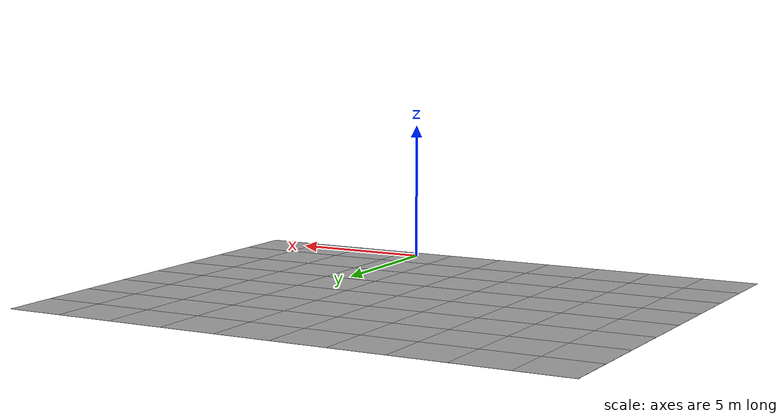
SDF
<?xml version="1.0" ?>
<sdf version="1.5">
  <model name="Starting Floor">
    <static>true</static>
    <link name="link">

      <visual name="visual_floor_0">
        <pose>-12.21 0.35 0 0 0 0</pose>
        <geometry>
          <box>
            <size>2 2 0.01</size>
          </box>
        </geometry>
        <material>
          <script>
            <uri>model://starting_floor/materials/scripts</uri>
            <uri>model://starting_floor/materials/textures</uri>
            <name>StartingFloor/Floor</name>
          </script>
        </material>
      </visual>
      <visual name="visual_floor_1">
        <pose>-10.21 0.35 0 0 0 0</pose>
        <geometry>
          <box>
            <size>2 2 0.01</size>
          </box>
        </geometry>
        <material>
          <script>
            <uri>model://starting_floor/materials/scripts</uri>
            <uri>model://starting_floor/materials/textures</uri>
            <name>StartingFloor/Floor</name>
          </script>
        </material>
      </visual>
      <visual name="visual_floor_2">
        <pose>-8.21 0.35 0 0 0 0</pose>
        <geometry>
          <box>
            <size>2 2 0.01</size>
          </box>
        </geometry>
        <material>
          <script>
            <uri>model://starting_floor/materials/scripts</uri>
            <uri>model://starting_floor/materials/textures</uri>
            <name>StartingFloor/Floor</name>
          </script>
        </material>
      </visual>
      <visual name="visual_floor_3">
        <pose>-6.21 0.35 0 0 0 0</pose>
        <geometry>
          <box>
            <size>2 2 0.01</size>
          </box>
        </geometry>
        <material>
          <script>
            <uri>model://starting_floor/materials/scripts</uri>
            <uri>model://starting_floor/materials/textures</uri>
            <name>StartingFloor/Floor</name>
          </script>
        </material>
      </visual>
      <visual name="visual_floor_4">
        <pose>-4.21 0.35 0 0 0 0</pose>
        <geometry>
          <box>
            <size>2 2 0.01</size>
          </box>
        </geometry>
        <material>
          <script>
            <uri>model://starting_floor/materials/scripts</uri>
            <uri>model://starting_floor/materials/textures</uri>
            <name>StartingFloor/Floor</name>
          </script>
        </material>
      </visual>
      <visual name="visual_floor_5">
        <pose>-2.21 0.35 0 0 0 0</pose>
        <geometry>
          <box>
            <size>2 2 0.01</size>
          </box>
        </geometry>
        <material>
          <script>
            <uri>model://starting_floor/materials/scripts</uri>
            <uri>model://starting_floor/materials/textures</uri>
            <name>StartingFloor/Floor</name>
          </script>
        </material>
      </visual>
      <visual name="visual_floor_6">
        <pose>-0.21 0.35 0 0 0 0</pose>
        <geometry>
          <box>
            <size>2 2 0.01</size>
          </box>
        </geometry>
        <material>
          <script>
            <uri>model://starting_floor/materials/scripts</uri>
            <uri>model://starting_floor/materials/textures</uri>
            <name>StartingFloor/Floor</name>
          </script>
        </material>
      </visual>
      <visual name="visual_floor_7">
        <pose>1.79 0.35 0 0 0 1.5707</pose>
        <geometry>
          <box>
            <size>2 2 0.01</size>
          </box>
        </geometry>
        <material>
          <script>
            <uri>model://starting_floor/materials/scripts</uri>
            <uri>model://starting_floor/materials/textures</uri>
            <name>StartingFloor/Floor</name>
          </script>
        </material>
      </visual>
      <visual name="visual_floor_8">
        <pose>3.79 0.35 0 0 0 0</pose>
        <geometry>
          <box>
            <size>2 2 0.01</size>
          </box>
        </geometry>
        <material>
          <script>
            <uri>model://starting_floor/materials/scripts</uri>
            <uri>model://starting_floor/materials/textures</uri>
            <name>StartingFloor/Floor</name>
          </script>
        </material>
      </visual>
      <visual name="visual_floor_9">
        <pose>5.79 0.35 0 0 0 0</pose>
        <geometry>
          <box>
            <size>2 2 0.01</size>
          </box>
        </geometry>
        <material>
          <script>
            <uri>model://starting_floor/materials/scripts</uri>
            <uri>model://starting_floor/materials/textures</uri>
            <name>StartingFloor/Floor</name>
          </script>
        </material>
      </visual>
      <visual name="visual_floor_10">
        <pose>-12.21 2.35 0 0 0 1.5707</pose>
        <geometry>
          <box>
            <size>2 2 0.01</size>
          </box>
        </geometry>
        <material>
          <script>
            <uri>model://starting_floor/materials/scripts</uri>
            <uri>model://starting_floor/materials/textures</uri>
            <name>StartingFloor/Floor</name>
          </script>
        </material>
      </visual>
      <visual name="visual_floor_11">
        <pose>-10.21 2.35 0 0 0 0</pose>
        <geometry>
          <box>
            <size>2 2 0.01</size>
          </box>
        </geometry>
        <material>
          <script>
            <uri>model://starting_floor/materials/scripts</uri>
            <uri>model://starting_floor/materials/textures</uri>
            <name>StartingFloor/Floor</name>
          </script>
        </material>
      </visual>
      <visual name="visual_floor_12">
        <pose>-8.21 2.35 0 0 0 0</pose>
        <geometry>
          <box>
            <size>2 2 0.01</size>
          </box>
        </geometry>
        <material>
          <script>
            <uri>model://starting_floor/materials/scripts</uri>
            <uri>model://starting_floor/materials/textures</uri>
            <name>StartingFloor/Floor</name>
          </script>
        </material>
      </visual>
      <visual name="visual_floor_13">
        <pose>-6.21 2.35 0 0 0 0</pose>
        <geometry>
          <box>
            <size>2 2 0.01</size>
          </box>
        </geometry>
        <material>
          <script>
            <uri>model://starting_floor/materials/scripts</uri>
            <uri>model://starting_floor/materials/textures</uri>
            <name>StartingFloor/Floor</name>
          </script>
        </material>
      </visual>
      <visual name="visual_floor_14">
        <pose>-4.21 2.35 0 0 0 0</pose>
        <geometry>
          <box>
            <size>2 2 0.01</size>
          </box>
        </geometry>
        <material>
          <script>
            <uri>model://starting_floor/materials/scripts</uri>
            <uri>model://starting_floor/materials/textures</uri>
            <name>StartingFloor/Floor</name>
          </script>
        </material>
      </visual>
      <visual name="visual_floor_15">
        <pose>-2.21 2.35 0 0 0 0</pose>
        <geometry>
          <box>
            <size>2 2 0.01</size>
          </box>
        </geometry>
        <material>
          <script>
            <uri>model://starting_floor/materials/scripts</uri>
            <uri>model://starting_floor/materials/textures</uri>
            <name>StartingFloor/Floor</name>
          </script>
        </material>
      </visual>
      <visual name="visual_floor_16">
        <pose>-0.21 2.35 0 0 0 1.5707</pose>
        <geometry>
          <box>
            <size>2 2 0.01</size>
          </box>
        </geometry>
        <material>
          <script>
            <uri>model://starting_floor/materials/scripts</uri>
            <uri>model://starting_floor/materials/textures</uri>
            <name>StartingFloor/FloorStripped</name>
          </script>
        </material>
      </visual>
      <visual name="visual_floor_17">
        <pose>1.79 2.35 0 0 0 1.5707</pose>
        <geometry>
          <box>
            <size>2 2 0.01</size>
          </box>
        </geometry>
        <material>
          <script>
            <uri>model://starting_floor/materials/scripts</uri>
            <uri>model://starting_floor/materials/textures</uri>
            <name>StartingFloor/Floor</name>
          </script>
        </material>
      </visual>
      <visual name="visual_floor_18">
        <pose>3.79 2.35 0 0 0 0</pose>
        <geometry>
          <box>
            <size>2 2 0.01</size>
          </box>
        </geometry>
        <material>
          <script>
            <uri>model://starting_floor/materials/scripts</uri>
            <uri>model://starting_floor/materials/textures</uri>
            <name>StartingFloor/Floor</name>
          </script>
        </material>
      </visual>
      <visual name="visual_floor_19">
        <pose>5.79 2.35 0 0 0 0</pose>
        <geometry>
          <box>
            <size>2 2 0.01</size>
          </box>
        </geometry>
        <material>
          <script>
            <uri>model://starting_floor/materials/scripts</uri>
            <uri>model://starting_floor/materials/textures</uri>
            <name>StartingFloor/Floor</name>
          </script>
        </material>
      </visual>
      <visual name="visual_floor_20">
        <pose>-12.21 4.35 0 0 0 0</pose>
        <geometry>
          <box>
            <size>2 2 0.01</size>
          </box>
        </geometry>
        <material>
          <script>
            <uri>model://starting_floor/materials/scripts</uri>
            <uri>model://starting_floor/materials/textures</uri>
            <name>StartingFloor/Floor</name>
          </script>
        </material>
      </visual>
      <visual name="visual_floor_21">
        <pose>-10.21 4.35 0 0 0 0</pose>
        <geometry>
          <box>
            <size>2 2 0.01</size>
          </box>
        </geometry>
        <material>
          <script>
            <uri>model://starting_floor/materials/scripts</uri>
            <uri>model://starting_floor/materials/textures</uri>
            <name>StartingFloor/Floor</name>
          </script>
        </material>
      </visual>
      <visual name="visual_floor_22">
        <pose>-8.21 4.35 0 0 0 1.5707</pose>
        <geometry>
          <box>
            <size>2 2 0.01</size>
          </box>
        </geometry>
        <material>
          <script>
            <uri>model://starting_floor/materials/scripts</uri>
            <uri>model://starting_floor/materials/textures</uri>
            <name>StartingFloor/Floor</name>
          </script>
        </material>
      </visual>
      <visual name="visual_floor_23">
        <pose>-6.21 4.35 0 0 0 0</pose>
        <geometry>
          <box>
            <size>2 2 0.01</size>
          </box>
        </geometry>
        <material>
          <script>
            <uri>model://starting_floor/materials/scripts</uri>
            <uri>model://starting_floor/materials/textures</uri>
            <name>StartingFloor/Floor</name>
          </script>
        </material>
      </visual>
      <visual name="visual_floor_24">
        <pose>-4.21 4.35 0 0 0 0</pose>
        <geometry>
          <box>
            <size>2 2 0.01</size>
          </box>
        </geometry>
        <material>
          <script>
            <uri>model://starting_floor/materials/scripts</uri>
            <uri>model://starting_floor/materials/textures</uri>
            <name>StartingFloor/Floor</name>
          </script>
        </material>
      </visual>
      <visual name="visual_floor_25">
        <pose>-2.21 4.35 0 0 0 0</pose>
        <geometry>
          <box>
            <size>2 2 0.01</size>
          </box>
        </geometry>
        <material>
          <script>
            <uri>model://starting_floor/materials/scripts</uri>
            <uri>model://starting_floor/materials/textures</uri>
            <name>StartingFloor/Floor</name>
          </script>
        </material>
      </visual>
      <visual name="visual_floor_26">
        <pose>-0.21 4.35 0 0 0 0</pose>
        <geometry>
          <box>
            <size>2 2 0.01</size>
          </box>
        </geometry>
        <material>
          <script>
            <uri>model://starting_floor/materials/scripts</uri>
            <uri>model://starting_floor/materials/textures</uri>
            <name>StartingFloor/Floor</name>
          </script>
        </material>
      </visual>
      <visual name="visual_floor_27">
        <pose>1.79 4.35 0 0 0 0</pose>
        <geometry>
          <box>
            <size>2 2 0.01</size>
          </box>
        </geometry>
        <material>
          <script>
            <uri>model://starting_floor/materials/scripts</uri>
            <uri>model://starting_floor/materials/textures</uri>
            <name>StartingFloor/Floor</name>
          </script>
        </material>
      </visual>
      <visual name="visual_floor_28">
        <pose>3.79 4.35 0 0 0 0</pose>
        <geometry>
          <box>
            <size>2 2 0.01</size>
          </box>
        </geometry>
        <material>
          <script>
            <uri>model://starting_floor/materials/scripts</uri>
            <uri>model://starting_floor/materials/textures</uri>
            <name>StartingFloor/Floor</name>
          </script>
        </material>
      </visual>
      <visual name="visual_floor_29">
        <pose>5.79 4.35 0 0 0 1.5707</pose>
        <geometry>
          <box>
            <size>2 2 0.01</size>
          </box>
        </geometry>
        <material>
          <script>
            <uri>model://starting_floor/materials/scripts</uri>
            <uri>model://starting_floor/materials/textures</uri>
            <name>StartingFloor/Floor</name>
          </script>
        </material>
      </visual>
      <visual name="visual_floor_30">
        <pose>-12.21 6.35 0 0 0 0</pose>
        <geometry>
          <box>
            <size>2 2 0.01</size>
          </box>
        </geometry>
        <material>
          <script>
            <uri>model://starting_floor/materials/scripts</uri>
            <uri>model://starting_floor/materials/textures</uri>
            <name>StartingFloor/Floor</name>
          </script>
        </material>
      </visual>
      <visual name="visual_floor_31">
        <pose>-10.21 6.35 0 0 0 0</pose>
        <geometry>
          <box>
            <size>2 2 0.01</size>
          </box>
        </geometry>
        <material>
          <script>
            <uri>model://starting_floor/materials/scripts</uri>
            <uri>model://starting_floor/materials/textures</uri>
            <name>StartingFloor/Floor</name>
          </script>
        </material>
      </visual>
      <visual name="visual_floor_32">
        <pose>-8.21 6.35 0 0 0 0</pose>
        <geometry>
          <box>
            <size>2 2 0.01</size>
          </box>
        </geometry>
        <material>
          <script>
            <uri>model://starting_floor/materials/scripts</uri>
            <uri>model://starting_floor/materials/textures</uri>
            <name>StartingFloor/Floor</name>
          </script>
        </material>
      </visual>
      <visual name="visual_floor_33">
        <pose>-6.21 6.35 0 0 0 1.5707</pose>
        <geometry>
          <box>
            <size>2 2 0.01</size>
          </box>
        </geometry>
        <material>
          <script>
            <uri>model://starting_floor/materials/scripts</uri>
            <uri>model://starting_floor/materials/textures</uri>
            <name>StartingFloor/Floor</name>
          </script>
        </material>
      </visual>
      <visual name="visual_floor_34">
        <pose>-4.21 6.35 0 0 0 0</pose>
        <geometry>
          <box>
            <size>2 2 0.01</size>
          </box>
        </geometry>
        <material>
          <script>
            <uri>model://starting_floor/materials/scripts</uri>
            <uri>model://starting_floor/materials/textures</uri>
            <name>StartingFloor/Floor</name>
          </script>
        </material>
      </visual>
      <visual name="visual_floor_35">
        <pose>-2.21 6.35 0 0 0 1.5707</pose>
        <geometry>
          <box>
            <size>2 2 0.01</size>
          </box>
        </geometry>
        <material>
          <script>
            <uri>model://starting_floor/materials/scripts</uri>
            <uri>model://starting_floor/materials/textures</uri>
            <name>StartingFloor/Floor</name>
          </script>
        </material>
      </visual>
      <visual name="visual_floor_36">
        <pose>-0.21 6.35 0 0 0 0</pose>
        <geometry>
          <box>
            <size>2 2 0.01</size>
          </box>
        </geometry>
        <material>
          <script>
            <uri>model://starting_floor/materials/scripts</uri>
            <uri>model://starting_floor/materials/textures</uri>
            <name>StartingFloor/Floor</name>
          </script>
        </material>
      </visual>
      <visual name="visual_floor_37">
        <pose>1.79 6.35 0 0 0 0</pose>
        <geometry>
          <box>
            <size>2 2 0.01</size>
          </box>
        </geometry>
        <material>
          <script>
            <uri>model://starting_floor/materials/scripts</uri>
            <uri>model://starting_floor/materials/textures</uri>
            <name>StartingFloor/Floor</name>
          </script>
        </material>
      </visual>
      <visual name="visual_floor_38">
        <pose>3.79 6.35 0 0 0 0</pose>
        <geometry>
          <box>
            <size>2 2 0.01</size>
          </box>
        </geometry>
        <material>
          <script>
            <uri>model://starting_floor/materials/scripts</uri>
            <uri>model://starting_floor/materials/textures</uri>
            <name>StartingFloor/Floor</name>
          </script>
        </material>
      </visual>
      <visual name="visual_floor_39">
        <pose>5.79 6.35 0 0 0 0</pose>
        <geometry>
          <box>
            <size>2 2 0.01</size>
          </box>
        </geometry>
        <material>
          <script>
            <uri>model://starting_floor/materials/scripts</uri>
            <uri>model://starting_floor/materials/textures</uri>
            <name>StartingFloor/Floor</name>
          </script>
        </material>
      </visual>
      <visual name="visual_floor_40">
        <pose>-12.21 8.35 0 0 0 0</pose>
        <geometry>
          <box>
            <size>2 2 0.01</size>
          </box>
        </geometry>
        <material>
          <script>
            <uri>model://starting_floor/materials/scripts</uri>
            <uri>model://starting_floor/materials/textures</uri>
            <name>StartingFloor/Floor</name>
          </script>
        </material>
      </visual>
      <visual name="visual_floor_41">
        <pose>-10.21 8.35 0 0 0 0</pose>
        <geometry>
          <box>
            <size>2 2 0.01</size>
          </box>
        </geometry>
        <material>
          <script>
            <uri>model://starting_floor/materials/scripts</uri>
            <uri>model://starting_floor/materials/textures</uri>
            <name>StartingFloor/Floor</name>
          </script>
        </material>
      </visual>
      <visual name="visual_floor_42">
        <pose>-8.21 8.35 0 0 0 1.5707</pose>
        <geometry>
          <box>
            <size>2 2 0.01</size>
          </box>
        </geometry>
        <material>
          <script>
            <uri>model://starting_floor/materials/scripts</uri>
            <uri>model://starting_floor/materials/textures</uri>
            <name>StartingFloor/Floor</name>
          </script>
        </material>
      </visual>
      <visual name="visual_floor_43">
        <pose>-6.21 8.35 0 0 0 0</pose>
        <geometry>
          <box>
            <size>2 2 0.01</size>
          </box>
        </geometry>
        <material>
          <script>
            <uri>model://starting_floor/materials/scripts</uri>
            <uri>model://starting_floor/materials/textures</uri>
            <name>StartingFloor/Floor</name>
          </script>
        </material>
      </visual>
      <visual name="visual_floor_44">
        <pose>-4.21 8.35 0 0 0 0</pose>
        <geometry>
          <box>
            <size>2 2 0.01</size>
          </box>
        </geometry>
        <material>
          <script>
            <uri>model://starting_floor/materials/scripts</uri>
            <uri>model://starting_floor/materials/textures</uri>
            <name>StartingFloor/Floor</name>
          </script>
        </material>
      </visual>
      <visual name="visual_floor_45">
        <pose>-2.21 8.35 0 0 0 0</pose>
        <geometry>
          <box>
            <size>2 2 0.01</size>
          </box>
        </geometry>
        <material>
          <script>
            <uri>model://starting_floor/materials/scripts</uri>
            <uri>model://starting_floor/materials/textures</uri>
            <name>StartingFloor/Floor</name>
          </script>
        </material>
      </visual>
      <visual name="visual_floor_46">
        <pose>-0.21 8.35 0 0 0 1.5707</pose>
        <geometry>
          <box>
            <size>2 2 0.01</size>
          </box>
        </geometry>
        <material>
          <script>
            <uri>model://starting_floor/materials/scripts</uri>
            <uri>model://starting_floor/materials/textures</uri>
            <name>StartingFloor/Floor</name>
          </script>
        </material>
      </visual>
      <visual name="visual_floor_47">
        <pose>1.79 8.35 0 0 0 0</pose>
        <geometry>
          <box>
            <size>2 2 0.01</size>
          </box>
        </geometry>
        <material>
          <script>
            <uri>model://starting_floor/materials/scripts</uri>
            <uri>model://starting_floor/materials/textures</uri>
            <name>StartingFloor/Floor</name>
          </script>
        </material>
      </visual>
      <visual name="visual_floor_48">
        <pose>3.79 8.35 0 0 0 0</pose>
        <geometry>
          <box>
            <size>2 2 0.01</size>
          </box>
        </geometry>
        <material>
          <script>
            <uri>model://starting_floor/materials/scripts</uri>
            <uri>model://starting_floor/materials/textures</uri>
            <name>StartingFloor/Floor</name>
          </script>
        </material>
      </visual>
      <visual name="visual_floor_49">
        <pose>5.79 8.35 0 0 0 0</pose>
        <geometry>
          <box>
            <size>2 2 0.01</size>
          </box>
        </geometry>
        <material>
          <script>
            <uri>model://starting_floor/materials/scripts</uri>
            <uri>model://starting_floor/materials/textures</uri>
            <name>StartingFloor/Floor</name>
          </script>
        </material>
      </visual>
      <visual name="visual_floor_50">
        <pose>-12.21 10.35 0 0 0 0</pose>
        <geometry>
          <box>
            <size>2 2 0.01</size>
          </box>
        </geometry>
        <material>
          <script>
            <uri>model://starting_floor/materials/scripts</uri>
            <uri>model://starting_floor/materials/textures</uri>
            <name>StartingFloor/Floor</name>
          </script>
        </material>
      </visual>
      <visual name="visual_floor_51">
        <pose>-10.21 10.35 0 0 0 0</pose>
        <geometry>
          <box>
            <size>2 2 0.01</size>
          </box>
        </geometry>
        <material>
          <script>
            <uri>model://starting_floor/materials/scripts</uri>
            <uri>model://starting_floor/materials/textures</uri>
            <name>StartingFloor/Floor</name>
          </script>
        </material>
      </visual>
      <visual name="visual_floor_52">
        <pose>-8.21 10.35 0 0 0 0</pose>
        <geometry>
          <box>
            <size>2 2 0.01</size>
          </box>
        </geometry>
        <material>
          <script>
            <uri>model://starting_floor/materials/scripts</uri>
            <uri>model://starting_floor/materials/textures</uri>
            <name>StartingFloor/Floor</name>
          </script>
        </material>
      </visual>
      <visual name="visual_floor_53">
        <pose>-6.21 10.35 0 0 0 1.5707</pose>
        <geometry>
          <box>
            <size>2 2 0.01</size>
          </box>
        </geometry>
        <material>
          <script>
            <uri>model://starting_floor/materials/scripts</uri>
            <uri>model://starting_floor/materials/textures</uri>
            <name>StartingFloor/Floor</name>
          </script>
        </material>
      </visual>
      <visual name="visual_floor_54">
        <pose>-4.21 10.35 0 0 0 0</pose>
        <geometry>
          <box>
            <size>2 2 0.01</size>
          </box>
        </geometry>
        <material>
          <script>
            <uri>model://starting_floor/materials/scripts</uri>
            <uri>model://starting_floor/materials/textures</uri>
            <name>StartingFloor/Floor</name>
          </script>
        </material>
      </visual>
      <visual name="visual_floor_55">
        <pose>-2.21 10.35 0 0 0 0</pose>
        <geometry>
          <box>
            <size>2 2 0.01</size>
          </box>
        </geometry>
        <material>
          <script>
            <uri>model://starting_floor/materials/scripts</uri>
            <uri>model://starting_floor/materials/textures</uri>
            <name>StartingFloor/Floor</name>
          </script>
        </material>
      </visual>
      <visual name="visual_floor_56">
        <pose>-0.21 10.35 0 0 0 0</pose>
        <geometry>
          <box>
            <size>2 2 0.01</size>
          </box>
        </geometry>
        <material>
          <script>
            <uri>model://starting_floor/materials/scripts</uri>
            <uri>model://starting_floor/materials/textures</uri>
            <name>StartingFloor/Floor</name>
          </script>
        </material>
      </visual>
      <visual name="visual_floor_57">
        <pose>1.79 10.35 0 0 0 0</pose>
        <geometry>
          <box>
            <size>2 2 0.01</size>
          </box>
        </geometry>
        <material>
          <script>
            <uri>model://starting_floor/materials/scripts</uri>
            <uri>model://starting_floor/materials/textures</uri>
            <name>StartingFloor/Floor</name>
          </script>
        </material>
      </visual>
      <visual name="visual_floor_58">
        <pose>3.79 10.35 0 0 0 0</pose>
        <geometry>
          <box>
            <size>2 2 0.01</size>
          </box>
        </geometry>
        <material>
          <script>
            <uri>model://starting_floor/materials/scripts</uri>
            <uri>model://starting_floor/materials/textures</uri>
            <name>StartingFloor/Floor</name>
          </script>
        </material>
      </visual>
      <visual name="visual_floor_59">
        <pose>5.79 10.35 0 0 0 0</pose>
        <geometry>
          <box>
            <size>2 2 0.01</size>
          </box>
        </geometry>
        <material>
          <script>
            <uri>model://starting_floor/materials/scripts</uri>
            <uri>model://starting_floor/materials/textures</uri>
            <name>StartingFloor/Floor</name>
          </script>
        </material>
      </visual>
      <visual name="visual_floor_60">
        <pose>-12.21 12.35 0 0 0 1.5707</pose>
        <geometry>
          <box>
            <size>2 2 0.01</size>
          </box>
        </geometry>
        <material>
          <script>
            <uri>model://starting_floor/materials/scripts</uri>
            <uri>model://starting_floor/materials/textures</uri>
            <name>StartingFloor/Floor</name>
          </script>
        </material>
      </visual>
      <visual name="visual_floor_61">
        <pose>-10.21 12.35 0 0 0 0</pose>
        <geometry>
          <box>
            <size>2 2 0.01</size>
          </box>
        </geometry>
        <material>
          <script>
            <uri>model://starting_floor/materials/scripts</uri>
            <uri>model://starting_floor/materials/textures</uri>
            <name>StartingFloor/Floor</name>
          </script>
        </material>
      </visual>
      <visual name="visual_floor_62">
        <pose>-8.21 12.35 0 0 0 0</pose>
        <geometry>
          <box>
            <size>2 2 0.01</size>
          </box>
        </geometry>
        <material>
          <script>
            <uri>model://starting_floor/materials/scripts</uri>
            <uri>model://starting_floor/materials/textures</uri>
            <name>StartingFloor/Floor</name>
          </script>
        </material>
      </visual>
      <visual name="visual_floor_63">
        <pose>-6.21 12.35 0 0 0 0</pose>
        <geometry>
          <box>
            <size>2 2 0.01</size>
          </box>
        </geometry>
        <material>
          <script>
            <uri>model://starting_floor/materials/scripts</uri>
            <uri>model://starting_floor/materials/textures</uri>
            <name>StartingFloor/Floor</name>
          </script>
        </material>
      </visual>
      <visual name="visual_floor_64">
        <pose>-4.21 12.35 0 0 0 0</pose>
        <geometry>
          <box>
            <size>2 2 0.01</size>
          </box>
        </geometry>
        <material>
          <script>
            <uri>model://starting_floor/materials/scripts</uri>
            <uri>model://starting_floor/materials/textures</uri>
            <name>StartingFloor/Floor</name>
          </script>
        </material>
      </visual>
      <visual name="visual_floor_65">
        <pose>-2.21 12.35 0 0 0 1.5707</pose>
        <geometry>
          <box>
            <size>2 2 0.01</size>
          </box>
        </geometry>
        <material>
          <script>
            <uri>model://starting_floor/materials/scripts</uri>
            <uri>model://starting_floor/materials/textures</uri>
            <name>StartingFloor/Floor</name>
          </script>
        </material>
      </visual>
      <visual name="visual_floor_66">
        <pose>-0.21 12.35 0 0 0 0</pose>
        <geometry>
          <box>
            <size>2 2 0.01</size>
          </box>
        </geometry>
        <material>
          <script>
            <uri>model://starting_floor/materials/scripts</uri>
            <uri>model://starting_floor/materials/textures</uri>
            <name>StartingFloor/Floor</name>
          </script>
        </material>
      </visual>
      <visual name="visual_floor_67">
        <pose>1.79 12.35 0 0 0 0</pose>
        <geometry>
          <box>
            <size>2 2 0.01</size>
          </box>
        </geometry>
        <material>
          <script>
            <uri>model://starting_floor/materials/scripts</uri>
            <uri>model://starting_floor/materials/textures</uri>
            <name>StartingFloor/Floor</name>
          </script>
        </material>
      </visual>
      <visual name="visual_floor_68">
        <pose>3.79 12.35 0 0 0 0</pose>
        <geometry>
          <box>
            <size>2 2 0.01</size>
          </box>
        </geometry>
        <material>
          <script>
            <uri>model://starting_floor/materials/scripts</uri>
            <uri>model://starting_floor/materials/textures</uri>
            <name>StartingFloor/Floor</name>
          </script>
        </material>
      </visual>
      <visual name="visual_floor_69">
        <pose>5.79 12.35 0 0 0 0</pose>
        <geometry>
          <box>
            <size>2 2 0.01</size>
          </box>
        </geometry>
        <material>
          <script>
            <uri>model://starting_floor/materials/scripts</uri>
            <uri>model://starting_floor/materials/textures</uri>
            <name>StartingFloor/Floor</name>
          </script>
        </material>
      </visual>
      <visual name="visual_floor_70">
        <pose>-12.21 14.35 0 0 0 0</pose>
        <geometry>
          <box>
            <size>2 2 0.01</size>
          </box>
        </geometry>
        <material>
          <script>
            <uri>model://starting_floor/materials/scripts</uri>
            <uri>model://starting_floor/materials/textures</uri>
            <name>StartingFloor/Floor</name>
          </script>
        </material>
      </visual>
      <visual name="visual_floor_71">
        <pose>-10.21 14.35 0 0 0 0</pose>
        <geometry>
          <box>
            <size>2 2 0.01</size>
          </box>
        </geometry>
        <material>
          <script>
            <uri>model://starting_floor/materials/scripts</uri>
            <uri>model://starting_floor/materials/textures</uri>
            <name>StartingFloor/Floor</name>
          </script>
        </material>
      </visual>
      <visual name="visual_floor_72">
        <pose>-8.21 14.35 0 0 0 0</pose>
        <geometry>
          <box>
            <size>2 2 0.01</size>
          </box>
        </geometry>
        <material>
          <script>
            <uri>model://starting_floor/materials/scripts</uri>
            <uri>model://starting_floor/materials/textures</uri>
            <name>StartingFloor/Floor</name>
          </script>
        </material>
      </visual>
      <visual name="visual_floor_73">
        <pose>-6.21 14.35 0 0 0 0</pose>
        <geometry>
          <box>
            <size>2 2 0.01</size>
          </box>
        </geometry>
        <material>
          <script>
            <uri>model://starting_floor/materials/scripts</uri>
            <uri>model://starting_floor/materials/textures</uri>
            <name>StartingFloor/Floor</name>
          </script>
        </material>
      </visual>
      <visual name="visual_floor_74">
        <pose>-4.21 14.35 0 0 0 1.5707</pose>
        <geometry>
          <box>
            <size>2 2 0.01</size>
          </box>
        </geometry>
        <material>
          <script>
            <uri>model://starting_floor/materials/scripts</uri>
            <uri>model://starting_floor/materials/textures</uri>
            <name>StartingFloor/Floor</name>
          </script>
        </material>
      </visual>
      <visual name="visual_floor_75">
        <pose>-2.21 14.35 0 0 0 1.5707</pose>
        <geometry>
          <box>
            <size>2 2 0.01</size>
          </box>
        </geometry>
        <material>
          <script>
            <uri>model://starting_floor/materials/scripts</uri>
            <uri>model://starting_floor/materials/textures</uri>
            <name>StartingFloor/Floor</name>
          </script>
        </material>
      </visual>
      <visual name="visual_floor_76">
        <pose>-0.21 14.35 0 0 0 0</pose>
        <geometry>
          <box>
            <size>2 2 0.01</size>
          </box>
        </geometry>
        <material>
          <script>
            <uri>model://starting_floor/materials/scripts</uri>
            <uri>model://starting_floor/materials/textures</uri>
            <name>StartingFloor/Floor</name>
          </script>
        </material>
      </visual>
      <visual name="visual_floor_77">
        <pose>1.79 14.35 0 0 0 0</pose>
        <geometry>
          <box>
            <size>2 2 0.01</size>
          </box>
        </geometry>
        <material>
          <script>
            <uri>model://starting_floor/materials/scripts</uri>
            <uri>model://starting_floor/materials/textures</uri>
            <name>StartingFloor/Floor</name>
          </script>
        </material>
      </visual>
      <visual name="visual_floor_78">
        <pose>3.79 14.35 0 0 0 0</pose>
        <geometry>
          <box>
            <size>2 2 0.01</size>
          </box>
        </geometry>
        <material>
          <script>
            <uri>model://starting_floor/materials/scripts</uri>
            <uri>model://starting_floor/materials/textures</uri>
            <name>StartingFloor/Floor</name>
          </script>
        </material>
      </visual>
      <visual name="visual_floor_79">
        <pose>5.79 14.35 0 0 0 0</pose>
        <geometry>
          <box>
            <size>2 2 0.01</size>
          </box>
        </geometry>
        <material>
          <script>
            <uri>model://starting_floor/materials/scripts</uri>
            <uri>model://starting_floor/materials/textures</uri>
            <name>StartingFloor/Floor</name>
          </script>
        </material>
      </visual>
    </link>
  </model>
</sdf>
